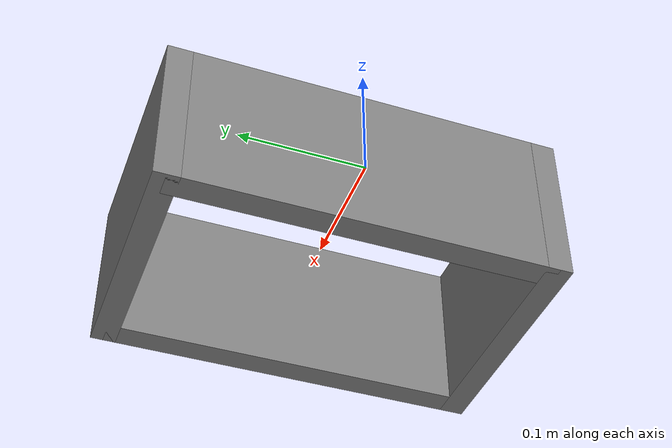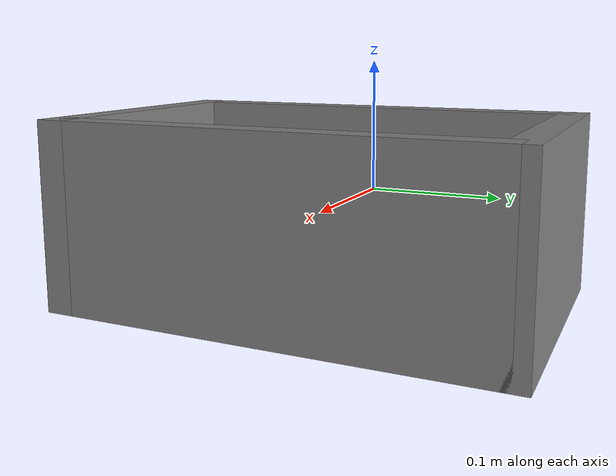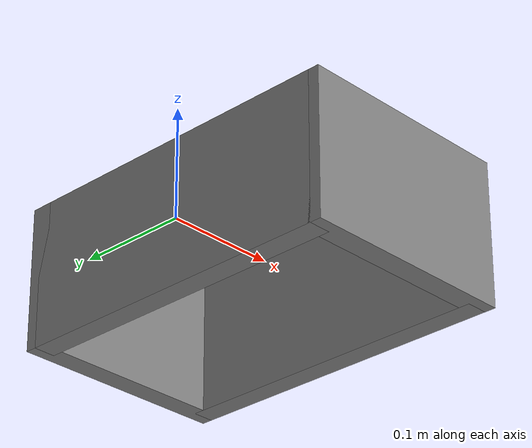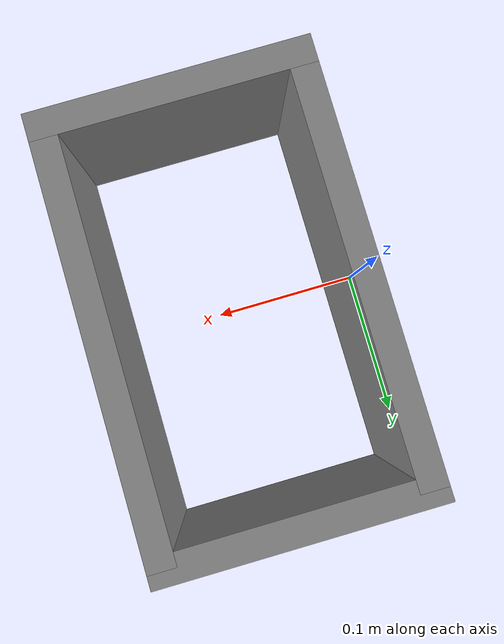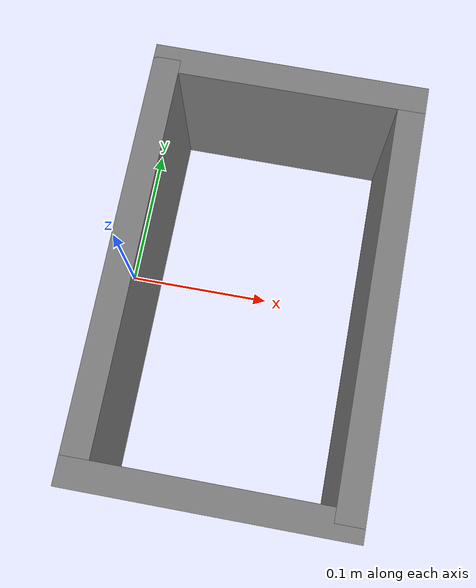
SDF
<?xml version='1.0'?>
<sdf version="1.4">
<model name="dropbox">
  <pose>0 0 0 0 0 0</pose>
  <static>true</static>
    <link name="left">
      <pose> 0.18 0 0 0 0 0 </pose>
      <inertial>
        <mass>0.05</mass>
        <inertia> <!-- inertias are tricky to compute -->
          <!-- http://gazebosim.org/tutorials?tut=inertia&cat=build_robot -->
          <ixx>0.0001199599</ixx>       <!-- for a box: ixx = 0.083 * mass * (y*y + z*z) -->
          <ixy>0.0</ixy>         <!-- for a box: ixy = 0 -->
          <ixz>0.0</ixz>         <!-- for a box: ixz = 0 -->
          <iyy>0.00015961315</iyy>       <!-- for a box: iyy = 0.083 * mass * (x*x + z*z) -->
          <iyz>0.0</iyz>         <!-- for a box: iyz = 0 -->
          <izz>5.360555e-05</izz>       <!-- for a box: izz = 0.083 * mass * (x*x + y*y) -->
        </inertia>
      </inertial>
      <collision name="collision">
        <geometry>
          <box>
            <size>0.02 0.3 0.13</size>
          </box>
        </geometry>
      </collision>
      <visual name="visual">
        <geometry>
          <box>
            <size>0.02 0.3 0.13</size>
          </box>
        </geometry>
        <material>
          <ambient>0 0 1 1.0</ambient>
          <diffuse>0.50754 0.50754 0.50754 1.0</diffuse>
          <specular>0.508273 0.508273 0.508273 1.0</specular>
          <emissive>0.0 0.0 0.0 0.0</emissive>
        </material>
      </visual>
    </link>
    <link name="right">
      <inertial>
        <mass>0.05</mass>
        <inertia> <!-- inertias are tricky to compute -->
          <!-- http://gazebosim.org/tutorials?tut=inertia&cat=build_robot -->
          <ixx>0.0001199599</ixx>       <!-- for a box: ixx = 0.083 * mass * (y*y + z*z) -->
          <ixy>0.0</ixy>         <!-- for a box: ixy = 0 -->
          <ixz>0.0</ixz>         <!-- for a box: ixz = 0 -->
          <iyy>0.00015961315</iyy>       <!-- for a box: iyy = 0.083 * mass * (x*x + z*z) -->
          <iyz>0.0</iyz>         <!-- for a box: iyz = 0 -->
          <izz>5.360555e-05</izz>       <!-- for a box: izz = 0.083 * mass * (x*x + y*y) -->
        </inertia>
      </inertial>
      <collision name="collision">
        <geometry>
          <box>
            <size>0.02 0.3 0.13</size>
          </box>
        </geometry>
      </collision>
      <visual name="visual">
        <geometry>
          <box>
            <size>0.02 0.3 0.13</size>
          </box>
        </geometry>
        <material>
          <ambient>0 0 1 1.0</ambient>
          <diffuse>0.50754 0.50754 0.50754 1.0</diffuse>
          <specular>0.508273 0.508273 0.508273 1.0</specular>
          <emissive>0.0 0.0 0.0 0.0</emissive>
        </material>
      </visual>
    </link>
    <link name="back">
      <pose>0.09 -0.15 0 0 0 0</pose>
      <inertial>
        <mass>0.05</mass>
        <inertia> <!-- inertias are tricky to compute -->
          <!-- http://gazebosim.org/tutorials?tut=inertia&cat=build_robot -->
          <ixx>0.0001199599</ixx>       <!-- for a box: ixx = 0.083 * mass * (y*y + z*z) -->
          <ixy>0.0</ixy>         <!-- for a box: ixy = 0 -->
          <ixz>0.0</ixz>         <!-- for a box: ixz = 0 -->
          <iyy>0.00015961315</iyy>       <!-- for a box: iyy = 0.083 * mass * (x*x + z*z) -->
          <iyz>0.0</iyz>         <!-- for a box: iyz = 0 -->
          <izz>5.360555e-05</izz>       <!-- for a box: izz = 0.083 * mass * (x*x + y*y) -->
        </inertia>
      </inertial>
      <collision name="collision">
        <geometry>
          <box>
            <size>0.2 0.02 0.13</size>
          </box>
        </geometry>
      </collision>
      <visual name="visual">
        <geometry>
          <box>
            <size>0.2 0.02 0.13</size>
          </box>
        </geometry>
        <material>
          <ambient>0 0 1 1.0</ambient>
          <diffuse>0.50754 0.50754 0.50754 1.0</diffuse>
          <specular>0.508273 0.508273 0.508273 1.0</specular>
          <emissive>0.0 0.0 0.0 0.0</emissive>
        </material>
      </visual>
    </link>
     <link name="front">
      <pose>0.09 0.15 0 0 0 0</pose>
      <inertial>
        <mass>0.05</mass>
        <inertia> <!-- inertias are tricky to compute -->
          <!-- http://gazebosim.org/tutorials?tut=inertia&cat=build_robot -->
          <ixx>0.0001199599</ixx>       <!-- for a box: ixx = 0.083 * mass * (y*y + z*z) -->
          <ixy>0.0</ixy>         <!-- for a box: ixy = 0 -->
          <ixz>0.0</ixz>         <!-- for a box: ixz = 0 -->
          <iyy>0.00015961315</iyy>       <!-- for a box: iyy = 0.083 * mass * (x*x + z*z) -->
          <iyz>0.0</iyz>         <!-- for a box: iyz = 0 -->
          <izz>5.360555e-05</izz>       <!-- for a box: izz = 0.083 * mass * (x*x + y*y) -->
        </inertia>
      </inertial>
      <collision name="collision">
        <geometry>
          <box>
            <size>0.2 0.02 0.13</size>
          </box>
        </geometry>
      </collision>
      <visual name="visual">
        <geometry>
          <box>
            <size>0.2 0.02 0.13</size>
          </box>
        </geometry>
        <material>
          <ambient>0 0 1 1.0</ambient>
          <diffuse>0.50754 0.50754 0.50754 1.0</diffuse>
          <specular>0.508273 0.508273 0.508273 1.0</specular>
          <emissive>0.0 0.0 0.0 0.0</emissive>
        </material>
      </visual>
    </link>
  </model>
</sdf>
